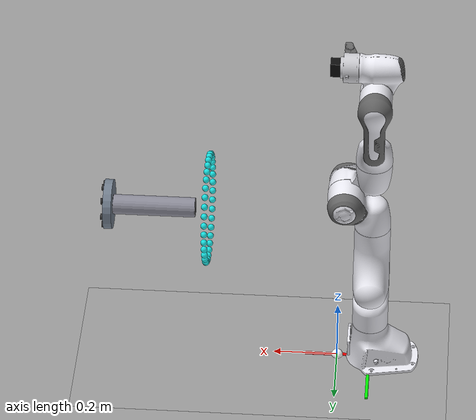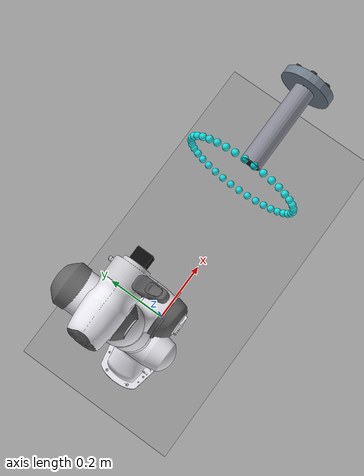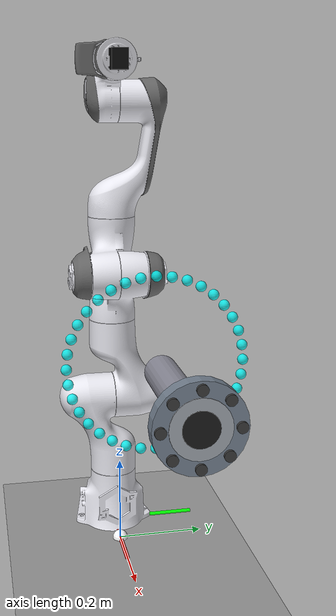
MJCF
<?xml version="1.0" encoding="utf-8"?>
<mujoco model="franka_flange_inspection">
  <compiler angle="radian" autolimits="true"/>
  <option gravity="0 0 -9.81" timestep="0.002" integrator="RK4"/>
  <size nuser_actuator="5"/>
  <statistic extent="1"/>
  <visual>
    <!-- Wide clipping for the interactive world viewer.
         D405 depth rendering overrides this in Python to 0.07 m ~ 0.50 m. -->
    <global offwidth="1280" offheight="800"/>
    <map znear="0.01" zfar="5.00"/>
  </visual>

  <asset>
    <texture name="grid_floor" type="2d" builtin="checker"
             rgb1="0.72 0.72 0.72" rgb2="0.48 0.48 0.48" width="512" height="512"/>
    <material name="floor_mat" texture="grid_floor" texrepeat="8 8" reflectance="0.1"/>
    <texture name="skybox" type="skybox" builtin="gradient"
             rgb1="0.70 0.78 0.90" rgb2="0.20 0.30 0.50" width="512" height="512"/>

    <mesh name="link0_col" file="franka_sim-master/meshes/collision/link0.stl"/>
    <mesh name="link1_col" file="franka_sim-master/meshes/collision/link1.stl"/>
    <mesh name="link2_col" file="franka_sim-master/meshes/collision/link2.stl"/>
    <mesh name="link3_col" file="franka_sim-master/meshes/collision/link3.stl"/>
    <mesh name="link4_col" file="franka_sim-master/meshes/collision/link4.stl"/>
    <mesh name="link5_col" file="franka_sim-master/meshes/collision/link5.stl"/>
    <mesh name="link6_col" file="franka_sim-master/meshes/collision/link6.stl"/>
    <mesh name="link7_col" file="franka_sim-master/meshes/collision/link7.stl"/>
    <mesh name="link0_viz" file="franka_sim-master/meshes/visual/link0.stl"/>
    <mesh name="link1_viz" file="franka_sim-master/meshes/visual/link1.stl"/>
    <mesh name="link2_viz" file="franka_sim-master/meshes/visual/link2.stl"/>
    <mesh name="link3_viz" file="franka_sim-master/meshes/visual/link3.stl"/>
    <mesh name="link3_dark_viz" file="franka_sim-master/meshes/visual/link3_dark.stl" scale="1.01 1.01 1.01"/>
    <mesh name="link4_viz" file="franka_sim-master/meshes/visual/link4.stl"/>
    <mesh name="link4_dark_viz" file="franka_sim-master/meshes/visual/link4_dark.stl" scale="1.01 1.01 1.01"/>
    <mesh name="link5_viz" file="franka_sim-master/meshes/visual/link5.stl"/>
    <mesh name="link5_dark_viz" file="franka_sim-master/meshes/visual/link5_dark.stl" scale="1.01 1.01 1.01"/>
    <mesh name="link6_viz" file="franka_sim-master/meshes/visual/link6.stl"/>
    <mesh name="link6_dark_viz" file="franka_sim-master/meshes/visual/link6_dark.stl" scale="1.01 1.01 1.01"/>
    <mesh name="link7_viz" file="franka_sim-master/meshes/visual/link7.stl"/>
    <mesh name="link7_dark_viz" file="franka_sim-master/meshes/visual/link7_dark.stl" scale="1.01 1.01 1.01"/>
  </asset>

  <default>
    <geom contype="0" conaffinity="0" condim="3"/>
    <site size="0.008" rgba="1 1 0 1" type="sphere"/>
    <default class="panda">
      <joint pos="0 0 0" axis="0 0 1" limited="true"/>
      <position forcelimited="true" ctrllimited="true" user="1002 40 2001 -0.005 0.005"/>
      <default class="panda_viz">
        <geom contype="0" conaffinity="0" group="0" type="mesh" rgba=".92 .92 .95 1"/>
      </default>
      <default class="panda_grey_viz">
        <geom contype="0" conaffinity="0" group="0" type="mesh" rgba=".4 .4 .4 1"/>
      </default>
      <default class="panda_col">
        <geom contype="0" conaffinity="0" group="3" type="mesh" rgba=".5 .6 .7 .25"/>
      </default>
      <default class="panda_arm">
        <joint damping="100"/>
      </default>
      <default class="panda_forearm">
        <joint damping="10"/>
      </default>
    </default>
  </default>

  <worldbody>
    <light name="sun"  pos="0.5 0 3"  dir="0 0 -1" diffuse="0.8 0.8 0.8" castshadow="true"/>
    <light name="fill" pos="-1 1 2"   dir="0.3 -0.3 -1" diffuse="0.3 0.3 0.3" castshadow="false"/>
    <geom name="floor" type="plane" size="4 4 0.1" pos="0 0 0" material="floor_mat" contype="1" conaffinity="1"/>
    <site name="world_origin" pos="0 0 0" size="0.018" rgba="1 1 1 1"/>

    <!-- Franka Panda from franka_sim-master/assets/chain0_nogripper.xml. -->
    <body name="panda0_link0" pos="-0.10 0 0" childclass="panda">
      <!-- Robot base frame marker. Orientation is parallel to the world frame. -->
      <site name="robot_base_origin" pos="0 0 0" size="0.018" rgba="1 1 1 1"/>
      <site name="robot_base_x" pos="0.100 0 0" size="0.005 0.100" euler="0 1.5708 0" rgba="1 0 0 0.9" type="cylinder"/>
      <site name="robot_base_y" pos="0 0.100 0" size="0.005 0.100" euler="1.5708 0 0" rgba="0 1 0 0.9" type="cylinder"/>
      <site name="robot_base_z" pos="0 0 0.100" size="0.005 0.100" rgba="0 0 1 0.9" type="cylinder"/>
      <geom class="panda_viz" mesh="link0_viz"/>
      <geom class="panda_col" mesh="link0_col" mass="2.91242"/>
      <body name="panda0_link1" pos="0 0 0.333">
        <joint name="panda0_joint1" range="-2.8973 2.8973" class="panda_arm"/>
        <geom class="panda_viz" mesh="link1_viz"/>
        <geom class="panda_col" mesh="link1_col" mass="2.7063"/>
        <body name="panda0_link2" pos="0 0 0" quat="0.707107 -0.707107 0 0">
          <joint name="panda0_joint2" range="-1.7628 1.7628" class="panda_arm"/>
          <geom class="panda_viz" mesh="link2_viz"/>
          <geom class="panda_col" mesh="link2_col" mass="2.73046"/>
          <body name="panda0_link3" pos="0 -0.316 0" quat="0.707107 0.707107 0 0">
            <joint name="panda0_joint3" range="-2.8973 2.8973" class="panda_arm"/>
            <geom class="panda_viz" mesh="link3_viz"/>
            <geom class="panda_grey_viz" mesh="link3_dark_viz" pos="0 .001 0"/>
            <geom class="panda_col" mesh="link3_col" mass="2.04104"/>
            <body name="panda0_link4" pos="0.0825 0 0" quat="0.707107 0.707107 0 0">
              <joint name="panda0_joint4" range="-3.0718 -0.0698" class="panda_arm"/>
              <geom class="panda_viz" mesh="link4_viz"/>
              <geom class="panda_grey_viz" mesh="link4_dark_viz"/>
              <geom class="panda_col" mesh="link4_col" mass="2.08129"/>
              <body name="panda0_link5" pos="-0.0825 0.384 0" quat="0.707107 -0.707107 0 0">
                <joint name="panda0_joint5" range="-2.8973 2.8973" class="panda_forearm"/>
                <geom class="panda_viz" mesh="link5_viz"/>
                <geom class="panda_grey_viz" mesh="link5_dark_viz"/>
                <geom class="panda_col" mesh="link5_col" mass="3.00049"/>
                <body name="panda0_link6" pos="0 0 0" euler="1.57 0 1.57">
                  <joint name="panda0_joint6" range="-0.0175 3.7525" class="panda_forearm"/>
                  <geom class="panda_viz" mesh="link6_viz"/>
                  <geom class="panda_grey_viz" mesh="link6_dark_viz"/>
                  <geom class="panda_col" mesh="link6_col" mass="1.3235"/>
                  <body name="panda0_link7" pos="0.088 0 0" euler="1.57 0 0.7854">
                    <joint name="panda0_joint7" range="-2.8973 2.8973" class="panda_forearm"/>
                    <geom class="panda_viz" mesh="link7_viz" rgba=".8 .8 .82 1"/>
                    <geom class="panda_grey_viz" mesh="link7_dark_viz" pos="0 0 -.0008"/>
                    <geom class="panda_col" mesh="link7_col" mass="0.2"/>

                    <body name="tool" pos="0 0 0.210" euler="0 0 -0.785398">
                      <site name="tcp" pos="0 0 0" size="0.012" rgba="1 1 0 0"/>
                      <site name="tcp_x" pos="0.060 0 0" size="0.004 0.060" euler="0 1.5708 0" rgba="1 0 0 0" type="cylinder"/>
                      <site name="tcp_y" pos="0 0.060 0" size="0.004 0.060" euler="1.5708 0 0" rgba="0 1 0 0" type="cylinder"/>
                      <site name="tcp_z" pos="0 0 0.060" size="0.004 0.060" rgba="0 0 1 0" type="cylinder"/>
                      <geom name="inspection_camera_body" type="box" size="0.022 0.018 0.026" pos="0 0 -0.100" rgba="0.05 0.05 0.05 1"/>
                      <geom name="inspection_camera_lens" type="cylinder" size="0.010 0.012" pos="0 0 -0.128" rgba="0.01 0.01 0.01 1"/>
                      <site name="camera_optical_center" pos="0 0 -0.100" size="0.010" rgba="1 0.6 0 0"/>
                      <camera name="inspection_camera" pos="0 0 -0.100" euler="0 0 0" fovy="60" mode="fixed"/>
                      <camera name="d405_camera" pos="0 0 -0.100" euler="3.14159 0 0" fovy="58" mode="fixed"/>
                    </body>
                  </body>
                </body>
              </body>
            </body>
          </body>
        </body>
      </body>
    </body>

    <!-- Pipe-flange assembly. Pipe axis is world +x; flange face center is (0.69, 0, 0.57). -->
    <body name="pipe_flange_assembly" pos="0.5650 0.0000 0.5700" euler="0 1.5708 0">
      <geom name="pipe_outer" type="cylinder" pos="0 0 0" size="0.03025 0.1250" rgba="0.55 0.55 0.60 1" contype="1" conaffinity="1"/>
      <geom name="pipe_bore" type="cylinder" pos="0 0 0" size="0.0271 0.1260" rgba="0.12 0.12 0.12 1"/>
      <geom name="flange_disc" type="cylinder" pos="0 0 0.13775" size="0.0760 0.01275" rgba="0.45 0.50 0.56 1" contype="1" conaffinity="1"/>
      <geom name="flange_bore" type="cylinder" pos="0 0 0.13775" size="0.03025 0.01375" rgba="0.11 0.11 0.11 1"/>
      <geom name="raised_face" type="cylinder" pos="0 0 0.1515" size="0.0502 0.0010" rgba="0.62 0.64 0.67 1"/>
      <geom name="raised_bore" type="cylinder" pos="0 0 0.1515" size="0.03025 0.0015" rgba="0.10 0.10 0.10 1"/>
      <geom name="bolt_0" type="cylinder" pos=" 0.0628  0.0000 0.1545" size="0.0093 0.0025" rgba="0.22 0.22 0.22 1"/>
      <geom name="bolt_1" type="cylinder" pos=" 0.0444  0.0444 0.1545" size="0.0093 0.0025" rgba="0.22 0.22 0.22 1"/>
      <geom name="bolt_2" type="cylinder" pos=" 0.0000  0.0628 0.1545" size="0.0093 0.0025" rgba="0.22 0.22 0.22 1"/>
      <geom name="bolt_3" type="cylinder" pos="-0.0444  0.0444 0.1545" size="0.0093 0.0025" rgba="0.22 0.22 0.22 1"/>
      <geom name="bolt_4" type="cylinder" pos="-0.0628  0.0000 0.1545" size="0.0093 0.0025" rgba="0.22 0.22 0.22 1"/>
      <geom name="bolt_5" type="cylinder" pos="-0.0444 -0.0444 0.1545" size="0.0093 0.0025" rgba="0.22 0.22 0.22 1"/>
      <geom name="bolt_6" type="cylinder" pos=" 0.0000 -0.0628 0.1545" size="0.0093 0.0025" rgba="0.22 0.22 0.22 1"/>
      <geom name="bolt_7" type="cylinder" pos=" 0.0444 -0.0444 0.1545" size="0.0093 0.0025" rgba="0.22 0.22 0.22 1"/>
      <geom name="hole_0" type="cylinder" pos=" 0.0628  0.0000 0.1535" size="0.0063 0.0012" rgba="0.04 0.04 0.04 1"/>
      <geom name="hole_1" type="cylinder" pos=" 0.0444  0.0444 0.1535" size="0.0063 0.0012" rgba="0.04 0.04 0.04 1"/>
      <geom name="hole_2" type="cylinder" pos=" 0.0000  0.0628 0.1535" size="0.0063 0.0012" rgba="0.04 0.04 0.04 1"/>
      <geom name="hole_3" type="cylinder" pos="-0.0444  0.0444 0.1535" size="0.0063 0.0012" rgba="0.04 0.04 0.04 1"/>
      <geom name="hole_4" type="cylinder" pos="-0.0628  0.0000 0.1535" size="0.0063 0.0012" rgba="0.04 0.04 0.04 1"/>
      <geom name="hole_5" type="cylinder" pos="-0.0444 -0.0444 0.1535" size="0.0063 0.0012" rgba="0.04 0.04 0.04 1"/>
      <geom name="hole_6" type="cylinder" pos=" 0.0000 -0.0628 0.1535" size="0.0063 0.0012" rgba="0.04 0.04 0.04 1"/>
      <geom name="hole_7" type="cylinder" pos=" 0.0444 -0.0444 0.1535" size="0.0063 0.0012" rgba="0.04 0.04 0.04 1"/>
      <site name="flange_center" pos="0 0 0.1250" size="0.013" rgba="1 0 0 0"/>
      <site name="flange_frame_y" pos="0 0.08 0.1250" size="0.005 0.08" euler="1.5708 0 0" rgba="0 1 0 0" type="cylinder"/>
      <site name="flange_frame_x" pos="0.08 0 0.1250" size="0.005 0.08" euler="0 1.5708 0" rgba="1 0 0 0" type="cylinder"/>
      <site name="flange_frame_z" pos="0 0 0.2050" size="0.005 0.08" rgba="0 0 1 0" type="cylinder"/>
    </body>

    <body name="traj_markers" pos="0 0 0">
      <site name="wp_00" pos="0.4000  0.1652 0.5700" size="0.010" rgba="0 1 1 0.8"/>
      <site name="wp_01" pos="0.4000  0.1627 0.5987" size="0.010" rgba="0 1 1 0.8"/>
      <site name="wp_02" pos="0.4000  0.1553 0.6265" size="0.010" rgba="0 1 1 0.8"/>
      <site name="wp_03" pos="0.4000  0.1431 0.6526" size="0.010" rgba="0 1 1 0.8"/>
      <site name="wp_04" pos="0.4000  0.1266 0.6762" size="0.010" rgba="0 1 1 0.8"/>
      <site name="wp_05" pos="0.4000  0.1062 0.6966" size="0.010" rgba="0 1 1 0.8"/>
      <site name="wp_06" pos="0.4000  0.0826 0.7131" size="0.010" rgba="0 1 1 0.8"/>
      <site name="wp_07" pos="0.4000  0.0565 0.7253" size="0.010" rgba="0 1 1 0.8"/>
      <site name="wp_08" pos="0.4000  0.0287 0.7327" size="0.010" rgba="0 1 1 0.8"/>
      <site name="wp_09" pos="0.4000  0.0000 0.7352" size="0.010" rgba="0 1 1 0.8"/>
      <site name="wp_10" pos="0.4000 -0.0287 0.7327" size="0.010" rgba="0 1 1 0.8"/>
      <site name="wp_11" pos="0.4000 -0.0565 0.7253" size="0.010" rgba="0 1 1 0.8"/>
      <site name="wp_12" pos="0.4000 -0.0826 0.7131" size="0.010" rgba="0 1 1 0.8"/>
      <site name="wp_13" pos="0.4000 -0.1062 0.6966" size="0.010" rgba="0 1 1 0.8"/>
      <site name="wp_14" pos="0.4000 -0.1266 0.6762" size="0.010" rgba="0 1 1 0.8"/>
      <site name="wp_15" pos="0.4000 -0.1431 0.6526" size="0.010" rgba="0 1 1 0.8"/>
      <site name="wp_16" pos="0.4000 -0.1553 0.6265" size="0.010" rgba="0 1 1 0.8"/>
      <site name="wp_17" pos="0.4000 -0.1627 0.5987" size="0.010" rgba="0 1 1 0.8"/>
      <site name="wp_18" pos="0.4000 -0.1652 0.5700" size="0.010" rgba="0 1 1 0.8"/>
      <site name="wp_19" pos="0.4000 -0.1627 0.5413" size="0.010" rgba="0 1 1 0.8"/>
      <site name="wp_20" pos="0.4000 -0.1553 0.5135" size="0.010" rgba="0 1 1 0.8"/>
      <site name="wp_21" pos="0.4000 -0.1431 0.4874" size="0.010" rgba="0 1 1 0.8"/>
      <site name="wp_22" pos="0.4000 -0.1266 0.4638" size="0.010" rgba="0 1 1 0.8"/>
      <site name="wp_23" pos="0.4000 -0.1062 0.4434" size="0.010" rgba="0 1 1 0.8"/>
      <site name="wp_24" pos="0.4000 -0.0826 0.4269" size="0.010" rgba="0 1 1 0.8"/>
      <site name="wp_25" pos="0.4000 -0.0565 0.4147" size="0.010" rgba="0 1 1 0.8"/>
      <site name="wp_26" pos="0.4000 -0.0287 0.4073" size="0.010" rgba="0 1 1 0.8"/>
      <site name="wp_27" pos="0.4000 -0.0000 0.4048" size="0.010" rgba="0 1 1 0.8"/>
      <site name="wp_28" pos="0.4000  0.0287 0.4073" size="0.010" rgba="0 1 1 0.8"/>
      <site name="wp_29" pos="0.4000  0.0565 0.4147" size="0.010" rgba="0 1 1 0.8"/>
      <site name="wp_30" pos="0.4000  0.0826 0.4269" size="0.010" rgba="0 1 1 0.8"/>
      <site name="wp_31" pos="0.4000  0.1062 0.4434" size="0.010" rgba="0 1 1 0.8"/>
      <site name="wp_32" pos="0.4000  0.1266 0.4638" size="0.010" rgba="0 1 1 0.8"/>
      <site name="wp_33" pos="0.4000  0.1431 0.4874" size="0.010" rgba="0 1 1 0.8"/>
      <site name="wp_34" pos="0.4000  0.1553 0.5135" size="0.010" rgba="0 1 1 0.8"/>
      <site name="wp_35" pos="0.4000  0.1627 0.5413" size="0.010" rgba="0 1 1 0.8"/>
    </body>
  </worldbody>

  <actuator>
    <position name="panda0_joint1" joint="panda0_joint1" class="panda" kp="870" kv="80" forcerange="-87 87" ctrlrange="-2.8973 2.8973"/>
    <position name="panda0_joint2" joint="panda0_joint2" class="panda" kp="870" kv="80" forcerange="-87 87" ctrlrange="-1.7628 1.7628"/>
    <position name="panda0_joint3" joint="panda0_joint3" class="panda" kp="870" kv="80" forcerange="-87 87" ctrlrange="-2.8973 2.8973"/>
    <position name="panda0_joint4" joint="panda0_joint4" class="panda" kp="870" kv="80" forcerange="-87 87" ctrlrange="-3.0718 -0.0698"/>
    <position name="panda0_joint5" joint="panda0_joint5" class="panda" kp="120" kv="20" forcerange="-12 12" ctrlrange="-2.8973 2.8973"/>
    <position name="panda0_joint6" joint="panda0_joint6" class="panda" kp="120" kv="20" forcerange="-12 12" ctrlrange="-0.0175 3.7525"/>
    <position name="panda0_joint7" joint="panda0_joint7" class="panda" kp="120" kv="20" forcerange="-12 12" ctrlrange="-2.8973 2.8973"/>
  </actuator>

  <sensor>
    <jointpos name="q1" joint="panda0_joint1"/>
    <jointpos name="q2" joint="panda0_joint2"/>
    <jointpos name="q3" joint="panda0_joint3"/>
    <jointpos name="q4" joint="panda0_joint4"/>
    <jointpos name="q5" joint="panda0_joint5"/>
    <jointpos name="q6" joint="panda0_joint6"/>
    <jointpos name="q7" joint="panda0_joint7"/>
    <framepos name="tcp_pos" objtype="site" objname="tcp"/>
    <framequat name="tcp_quat" objtype="site" objname="tcp"/>
    <framepos name="camera_pos" objtype="site" objname="camera_optical_center"/>
    <framequat name="camera_quat" objtype="site" objname="camera_optical_center"/>
  </sensor>

  <keyframe>
    <key name="home" qpos="0 -0.785 0 -2.356 0 1.571 0.785"/>
    <key name="inspect_wp1" qpos="2.254078 -1.665471 -1.329159 -2.057323 -0.152227 0.598290 0.638535"/>
  </keyframe>
</mujoco>
